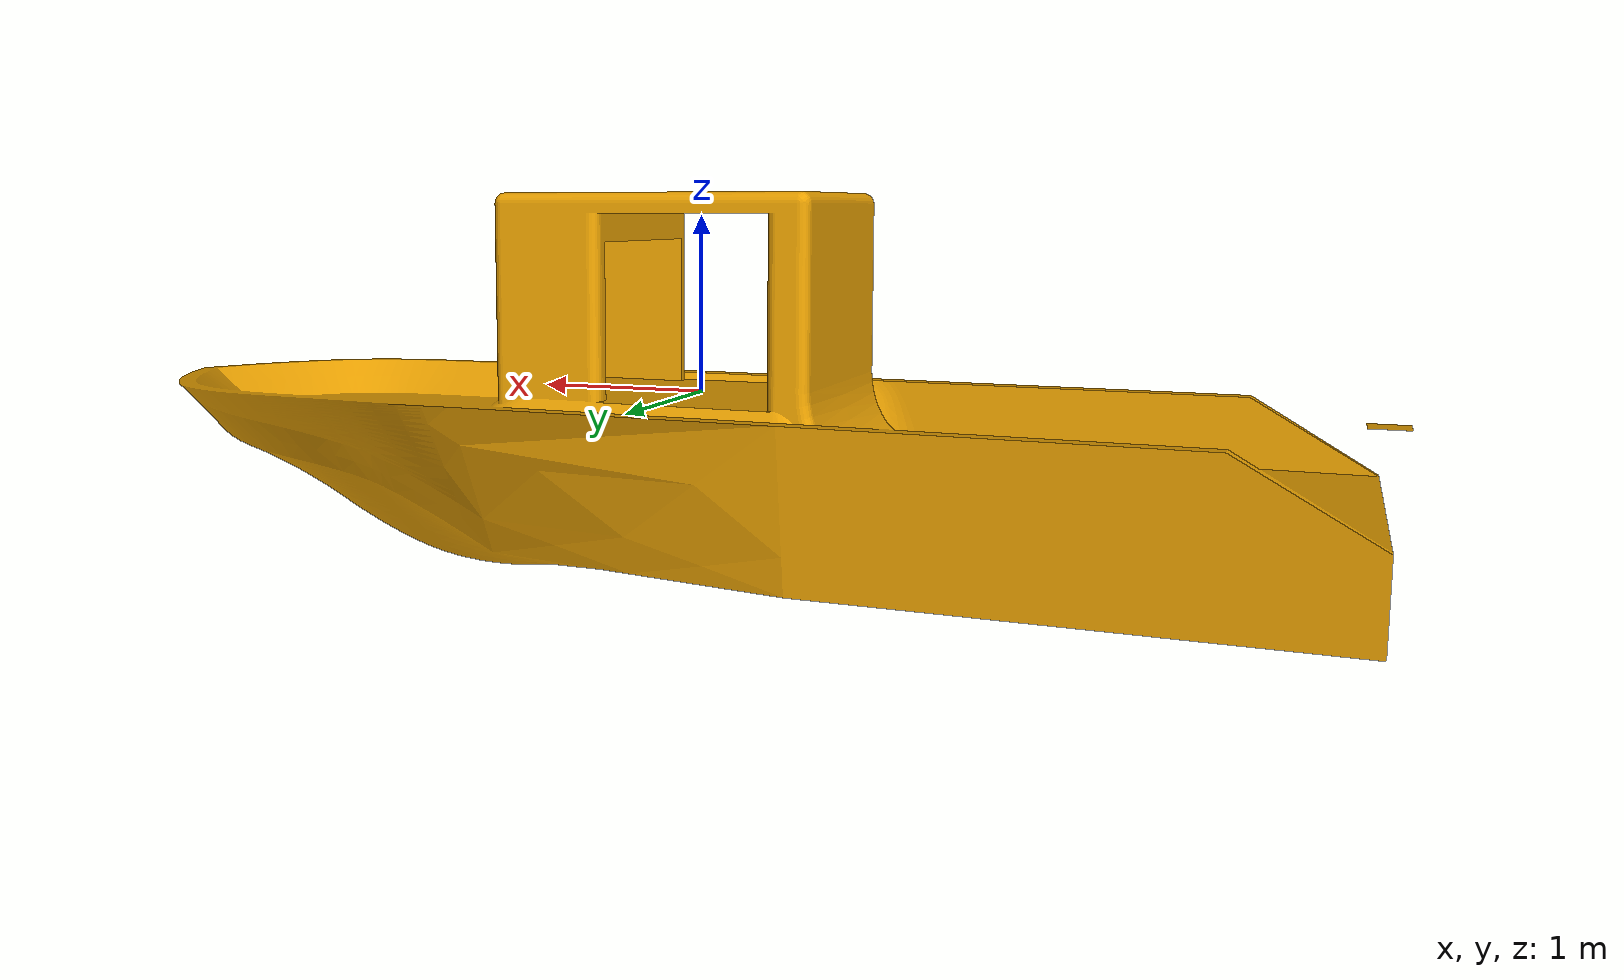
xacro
<?xml version="1.0"?>
<robot xmlns:xacro="http://ros.org/wiki/xacro">
  <xacro:arg name="namespace" default="jv1"/>
  <xacro:property name="namespace" value="$(arg namespace)" scope="global" />
  <link name="${namespace}/base_link">
    <visual>
      <origin xyz="-3.572 0 0.0" rpy="0 0 0" />
      <geometry>
        <mesh filename="package://jv1_description/models/meshes/jv1.obj"/>
      </geometry>
    </visual>
    <collision>
      <origin xyz="-3.572 0 0.0" rpy="0 0 0" />
      <geometry>
        <mesh filename="package://jv1_description/models/meshes/jv1.obj"/>
      </geometry>
    </collision>
  </link>

  <joint name="${namespace}/dummy_joint" type="fixed">
    <origin xyz="0 0 -0.4" rpy="0 0 0" />
    <parent link="${namespace}/base_link"/>
    <child link="${namespace}/dummy_link"/>
  </joint>

  <link name="${namespace}/dummy_link">
    <inertial>
      <mass value="2600.0"/>
      <inertia ixx="2000.0" ixy="0.0" ixz="0.0" iyy="10000.0" iyz="0.0" izz="10000.0"/>
    </inertial>
  </link>

  <gazebo reference="${namespace}/base_link">
    <sensor type="contact" name="collision_sensor">
      <always_on>true</always_on>
      <update_rate>100.0</update_rate>
      <contact>
        <collision>${namespace}/base_link::collision</collision>
      </contact>
      <plugin name="gazebo_ros_bumper" filename="libgazebo_ros_bumper.so">
        <bumperTopicName>${namespace}/sensors/collision</bumperTopicName>
        <frameName>${namespace}/base_link</frameName>
      </plugin>
    </sensor>
  </gazebo>

</robot>
